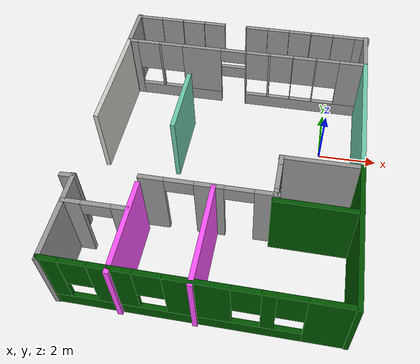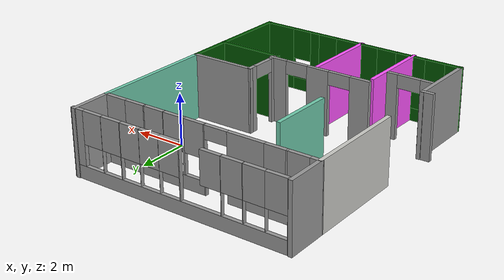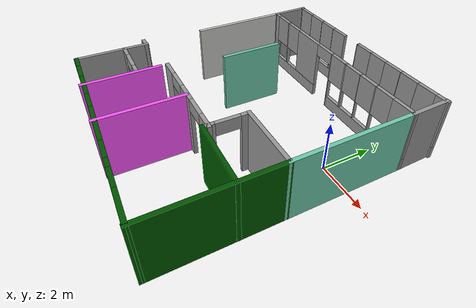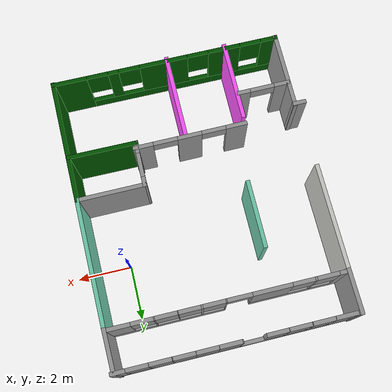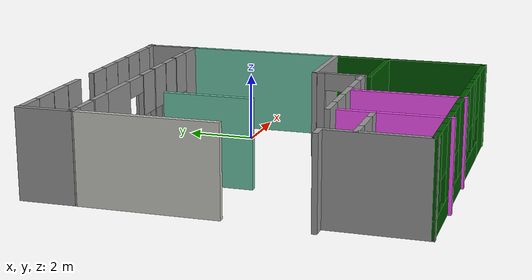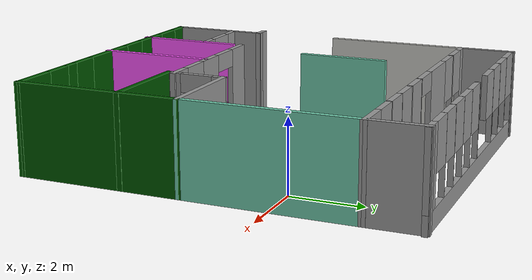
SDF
<?xml version='1.0'?>
<sdf version='1.6'>
  <model name='our_home'>
    <pose frame=''>-3.18431 -1.5516 0 0 -0 0</pose>
    <link name='Wall_1'>
      <collision name='Wall_1_Collision'>
        <geometry>
          <box>
            <size>3.98843 0.15 2.5</size>
          </box>
        </geometry>
        <pose frame=''>0 0 1.25 0 -0 0</pose>
      </collision>
      <visual name='Wall_1_Visual'>
        <pose frame=''>0 0 1.25 0 -0 0</pose>
        <geometry>
          <box>
            <size>3.98843 0.15 2.5</size>
          </box>
        </geometry>
        <material>
          <script>
            <uri>file://media/materials/scripts/gazebo.material</uri>
            <name>Gazebo/CeilingTiled</name>
          </script>
          <ambient>0.435294 0.796078 0.67451 1</ambient>
        </material>
        <meta>
          <layer>0</layer>
        </meta>
      </visual>
      <pose frame=''>-4.20959 1.9235 0 0 -0 1.57777</pose>
    </link>
    <link name='Wall_13'>
      <collision name='Wall_13_Collision'>
        <geometry>
          <box>
            <size>4.67985 0.15 2.5</size>
          </box>
        </geometry>
        <pose frame=''>0 0 1.25 0 -0 0</pose>
      </collision>
      <visual name='Wall_13_Visual'>
        <pose frame=''>0 0 1.25 0 -0 0</pose>
        <geometry>
          <box>
            <size>4.67985 0.15 2.5</size>
          </box>
        </geometry>
        <material>
          <script>
            <uri>file://media/materials/scripts/gazebo.material</uri>
            <name>Gazebo/Grey</name>
          </script>
          <ambient>0 0.333333 0 1</ambient>
        </material>
        <meta>
          <layer>0</layer>
        </meta>
      </visual>
      <pose frame=''>4.39155 -3.05803 0 0 0 -1.56957</pose>
    </link>
    <link name='Wall_14'>
      <pose frame=''>0.16282 -5.27256 0 0 -0 3.13446</pose>
      <visual name='Wall_14_Visual_0'>
        <pose frame=''>-3.6411 0 1.25 0 -0 0</pose>
        <geometry>
          <box>
            <size>1.331 0.15 2.5</size>
          </box>
        </geometry>
        <material>
          <script>
            <uri>file://media/materials/scripts/gazebo.material</uri>
            <name>Gazebo/Grey</name>
          </script>
          <ambient>0 0.333333 0 1</ambient>
        </material>
        <meta>
          <layer>0</layer>
        </meta>
      </visual>
      <collision name='Wall_14_Collision_0'>
        <geometry>
          <box>
            <size>1.331 0.15 2.5</size>
          </box>
        </geometry>
        <pose frame=''>-3.6411 0 1.25 0 -0 0</pose>
      </collision>
      <visual name='Wall_14_Visual_1'>
        <pose frame=''>0.665502 0 0.25 0 -0 0</pose>
        <geometry>
          <box>
            <size>7.2822 0.15 0.5</size>
          </box>
        </geometry>
        <material>
          <script>
            <uri>file://media/materials/scripts/gazebo.material</uri>
            <name>Gazebo/Grey</name>
          </script>
          <ambient>0 0.333333 0 1</ambient>
        </material>
        <meta>
          <layer>0</layer>
        </meta>
      </visual>
      <collision name='Wall_14_Collision_1'>
        <geometry>
          <box>
            <size>7.2822 0.15 0.5</size>
          </box>
        </geometry>
        <pose frame=''>0.665502 0 0.25 0 -0 0</pose>
      </collision>
      <visual name='Wall_14_Visual_2'>
        <pose frame=''>-1.9778 0 1.5 0 -0 0</pose>
        <geometry>
          <box>
            <size>0.395589 0.15 2</size>
          </box>
        </geometry>
        <material>
          <script>
            <uri>file://media/materials/scripts/gazebo.material</uri>
            <name>Gazebo/Grey</name>
          </script>
          <ambient>0 0.333333 0 1</ambient>
        </material>
        <meta>
          <layer>0</layer>
        </meta>
      </visual>
      <collision name='Wall_14_Collision_2'>
        <geometry>
          <box>
            <size>0.395589 0.15 2</size>
          </box>
        </geometry>
        <pose frame=''>-1.9778 0 1.5 0 -0 0</pose>
      </collision>
      <visual name='Wall_14_Visual_3'>
        <pose frame=''>-0.07181 0 1.5 0 -0 0</pose>
        <geometry>
          <box>
            <size>1.8164 0.15 2</size>
          </box>
        </geometry>
        <material>
          <script>
            <uri>file://media/materials/scripts/gazebo.material</uri>
            <name>Gazebo/Grey</name>
          </script>
          <ambient>0 0.333333 0 1</ambient>
        </material>
        <meta>
          <layer>0</layer>
        </meta>
      </visual>
      <collision name='Wall_14_Collision_3'>
        <geometry>
          <box>
            <size>1.8164 0.15 2</size>
          </box>
        </geometry>
        <pose frame=''>-0.07181 0 1.5 0 -0 0</pose>
      </collision>
      <visual name='Wall_14_Visual_4'>
        <pose frame=''>2.24598 0 1.5 0 -0 0</pose>
        <geometry>
          <box>
            <size>1.21918 0.15 2</size>
          </box>
        </geometry>
        <material>
          <script>
            <uri>file://media/materials/scripts/gazebo.material</uri>
            <name>Gazebo/Grey</name>
          </script>
          <ambient>0 0.333333 0 1</ambient>
        </material>
        <meta>
          <layer>0</layer>
        </meta>
      </visual>
      <collision name='Wall_14_Collision_4'>
        <geometry>
          <box>
            <size>1.21918 0.15 2</size>
          </box>
        </geometry>
        <pose frame=''>2.24598 0 1.5 0 -0 0</pose>
      </collision>
      <visual name='Wall_14_Visual_5'>
        <pose frame=''>3.98108 0 1.5 0 -0 0</pose>
        <geometry>
          <box>
            <size>0.651037 0.15 2</size>
          </box>
        </geometry>
        <material>
          <script>
            <uri>file://media/materials/scripts/gazebo.material</uri>
            <name>Gazebo/Grey</name>
          </script>
          <ambient>0 0.333333 0 1</ambient>
        </material>
        <meta>
          <layer>0</layer>
        </meta>
      </visual>
      <collision name='Wall_14_Collision_5'>
        <geometry>
          <box>
            <size>0.651037 0.15 2</size>
          </box>
        </geometry>
        <pose frame=''>3.98108 0 1.5 0 -0 0</pose>
      </collision>
      <visual name='Wall_14_Visual_6'>
        <pose frame=''>-2.5756 0 1.9 0 -0 0</pose>
        <geometry>
          <box>
            <size>0.8 0.15 1.2</size>
          </box>
        </geometry>
        <material>
          <script>
            <uri>file://media/materials/scripts/gazebo.material</uri>
            <name>Gazebo/Grey</name>
          </script>
          <ambient>0 0.333333 0 1</ambient>
        </material>
        <meta>
          <layer>0</layer>
        </meta>
      </visual>
      <collision name='Wall_14_Collision_6'>
        <geometry>
          <box>
            <size>0.8 0.15 1.2</size>
          </box>
        </geometry>
        <pose frame=''>-2.5756 0 1.9 0 -0 0</pose>
      </collision>
      <visual name='Wall_14_Visual_7'>
        <pose frame=''>-1.38001 0 1.9 0 -0 0</pose>
        <geometry>
          <box>
            <size>0.8 0.15 1.2</size>
          </box>
        </geometry>
        <material>
          <script>
            <uri>file://media/materials/scripts/gazebo.material</uri>
            <name>Gazebo/Grey</name>
          </script>
          <ambient>0 0.333333 0 1</ambient>
        </material>
        <meta>
          <layer>0</layer>
        </meta>
      </visual>
      <collision name='Wall_14_Collision_7'>
        <geometry>
          <box>
            <size>0.8 0.15 1.2</size>
          </box>
        </geometry>
        <pose frame=''>-1.38001 0 1.9 0 -0 0</pose>
      </collision>
      <visual name='Wall_14_Visual_8'>
        <pose frame=''>1.23639 0 1.9 0 -0 0</pose>
        <geometry>
          <box>
            <size>0.8 0.15 1.2</size>
          </box>
        </geometry>
        <material>
          <script>
            <uri>file://media/materials/scripts/gazebo.material</uri>
            <name>Gazebo/Grey</name>
          </script>
          <ambient>0 0.333333 0 1</ambient>
        </material>
        <meta>
          <layer>0</layer>
        </meta>
      </visual>
      <collision name='Wall_14_Collision_8'>
        <geometry>
          <box>
            <size>0.8 0.15 1.2</size>
          </box>
        </geometry>
        <pose frame=''>1.23639 0 1.9 0 -0 0</pose>
      </collision>
      <visual name='Wall_14_Visual_9'>
        <pose frame=''>3.25557 0 1.9 0 -0 0</pose>
        <geometry>
          <box>
            <size>0.8 0.15 1.2</size>
          </box>
        </geometry>
        <material>
          <script>
            <uri>file://media/materials/scripts/gazebo.material</uri>
            <name>Gazebo/Grey</name>
          </script>
          <ambient>0 0.333333 0 1</ambient>
        </material>
        <meta>
          <layer>0</layer>
        </meta>
      </visual>
      <collision name='Wall_14_Collision_9'>
        <geometry>
          <box>
            <size>0.8 0.15 1.2</size>
          </box>
        </geometry>
        <pose frame=''>3.25557 0 1.9 0 -0 0</pose>
      </collision>
    </link>
    <link name='Wall_17'>
      <collision name='Wall_17_Collision'>
        <geometry>
          <box>
            <size>2.92769 0.15 2.5</size>
          </box>
        </geometry>
        <pose frame=''>0 0 1.25 0 -0 0</pose>
      </collision>
      <visual name='Wall_17_Visual'>
        <pose frame=''>0 0 1.25 0 -0 0</pose>
        <geometry>
          <box>
            <size>2.92769 0.15 2.5</size>
          </box>
        </geometry>
        <material>
          <script>
            <uri>file://media/materials/scripts/gazebo.material</uri>
            <name>Gazebo/Grey</name>
          </script>
          <ambient>1 1 1 1</ambient>
        </material>
        <meta>
          <layer>0</layer>
        </meta>
      </visual>
      <pose frame=''>-4.06867 -3.87377 0 0 -0 1.5708</pose>
    </link>
    <link name='Wall_2'>
      <pose frame=''>0.078216 3.87343 0 0 -0 0</pose>
      <visual name='Wall_2_Visual_0'>
        <pose frame=''>-4.17296 0 1.25 0 -0 0</pose>
        <geometry>
          <box>
            <size>0.406443 0.15 2.5</size>
          </box>
        </geometry>
        <material>
          <script>
            <uri>file://media/materials/scripts/gazebo.material</uri>
            <name>Gazebo/Grey</name>
          </script>
          <ambient>1 1 1 1</ambient>
        </material>
        <meta>
          <layer>0</layer>
        </meta>
      </visual>
      <collision name='Wall_2_Collision_0'>
        <geometry>
          <box>
            <size>0.406443 0.15 2.5</size>
          </box>
        </geometry>
        <pose frame=''>-4.17296 0 1.25 0 -0 0</pose>
      </collision>
      <visual name='Wall_2_Visual_1'>
        <pose frame=''>0.048461 0 1.25 0 -0 0</pose>
        <geometry>
          <box>
            <size>0.041555 0.15 2.5</size>
          </box>
        </geometry>
        <material>
          <script>
            <uri>file://media/materials/scripts/gazebo.material</uri>
            <name>Gazebo/Grey</name>
          </script>
          <ambient>1 1 1 1</ambient>
        </material>
        <meta>
          <layer>0</layer>
        </meta>
      </visual>
      <collision name='Wall_2_Collision_1'>
        <geometry>
          <box>
            <size>0.041555 0.15 2.5</size>
          </box>
        </geometry>
        <pose frame=''>0.048461 0 1.25 0 -0 0</pose>
      </collision>
      <visual name='Wall_2_Visual_2'>
        <pose frame=''>-2.42103 0 0.25 0 -0 0</pose>
        <geometry>
          <box>
            <size>3.09742 0.15 0.5</size>
          </box>
        </geometry>
        <material>
          <script>
            <uri>file://media/materials/scripts/gazebo.material</uri>
            <name>Gazebo/Grey</name>
          </script>
          <ambient>1 1 1 1</ambient>
        </material>
        <meta>
          <layer>0</layer>
        </meta>
      </visual>
      <collision name='Wall_2_Collision_2'>
        <geometry>
          <box>
            <size>3.09742 0.15 0.5</size>
          </box>
        </geometry>
        <pose frame=''>-2.42103 0 0.25 0 -0 0</pose>
      </collision>
      <visual name='Wall_2_Visual_3'>
        <pose frame=''>2.22271 0 0.25 0 -0 0</pose>
        <geometry>
          <box>
            <size>4.30694 0.15 0.5</size>
          </box>
        </geometry>
        <material>
          <script>
            <uri>file://media/materials/scripts/gazebo.material</uri>
            <name>Gazebo/Grey</name>
          </script>
          <ambient>1 1 1 1</ambient>
        </material>
        <meta>
          <layer>0</layer>
        </meta>
      </visual>
      <collision name='Wall_2_Collision_3'>
        <geometry>
          <box>
            <size>4.30694 0.15 0.5</size>
          </box>
        </geometry>
        <pose frame=''>2.22271 0 0.25 0 -0 0</pose>
      </collision>
      <visual name='Wall_2_Visual_4'>
        <pose frame=''>-3.13433 0 1.5 0 -0 0</pose>
        <geometry>
          <box>
            <size>0.070821 0.15 2</size>
          </box>
        </geometry>
        <material>
          <script>
            <uri>file://media/materials/scripts/gazebo.material</uri>
            <name>Gazebo/Grey</name>
          </script>
          <ambient>1 1 1 1</ambient>
        </material>
        <meta>
          <layer>0</layer>
        </meta>
      </visual>
      <collision name='Wall_2_Collision_4'>
        <geometry>
          <box>
            <size>0.070821 0.15 2</size>
          </box>
        </geometry>
        <pose frame=''>-3.13433 0 1.5 0 -0 0</pose>
      </collision>
      <visual name='Wall_2_Visual_5'>
        <pose frame=''>-1.58562 0 1.5 0 -0 0</pose>
        <geometry>
          <box>
            <size>1.4266 0.15 2</size>
          </box>
        </geometry>
        <material>
          <script>
            <uri>file://media/materials/scripts/gazebo.material</uri>
            <name>Gazebo/Grey</name>
          </script>
          <ambient>1 1 1 1</ambient>
        </material>
        <meta>
          <layer>0</layer>
        </meta>
      </visual>
      <collision name='Wall_2_Collision_5'>
        <geometry>
          <box>
            <size>1.4266 0.15 2</size>
          </box>
        </geometry>
        <pose frame=''>-1.58562 0 1.5 0 -0 0</pose>
      </collision>
      <visual name='Wall_2_Visual_6'>
        <pose frame=''>-1.58562 0 1.5 0 -0 0</pose>
        <geometry>
          <box>
            <size>1.4266 0.15 2</size>
          </box>
        </geometry>
        <material>
          <script>
            <uri>file://media/materials/scripts/gazebo.material</uri>
            <name>Gazebo/Grey</name>
          </script>
          <ambient>1 1 1 1</ambient>
        </material>
        <meta>
          <layer>0</layer>
        </meta>
      </visual>
      <collision name='Wall_2_Collision_6'>
        <geometry>
          <box>
            <size>1.4266 0.15 2</size>
          </box>
        </geometry>
        <pose frame=''>-1.58562 0 1.5 0 -0 0</pose>
      </collision>
      <visual name='Wall_2_Visual_7'>
        <pose frame=''>0.902349 0 1.5 0 -0 0</pose>
        <geometry>
          <box>
            <size>0.066221 0.15 2</size>
          </box>
        </geometry>
        <material>
          <script>
            <uri>file://media/materials/scripts/gazebo.material</uri>
            <name>Gazebo/Grey</name>
          </script>
          <ambient>1 1 1 1</ambient>
        </material>
        <meta>
          <layer>0</layer>
        </meta>
      </visual>
      <collision name='Wall_2_Collision_7'>
        <geometry>
          <box>
            <size>0.066221 0.15 2</size>
          </box>
        </geometry>
        <pose frame=''>0.902349 0 1.5 0 -0 0</pose>
      </collision>
      <visual name='Wall_2_Visual_8'>
        <pose frame=''>1.74516 0 1.5 0 -0 0</pose>
        <geometry>
          <box>
            <size>0.019398 0.15 2</size>
          </box>
        </geometry>
        <material>
          <script>
            <uri>file://media/materials/scripts/gazebo.material</uri>
            <name>Gazebo/Grey</name>
          </script>
          <ambient>1 1 1 1</ambient>
        </material>
        <meta>
          <layer>0</layer>
        </meta>
      </visual>
      <collision name='Wall_2_Collision_8'>
        <geometry>
          <box>
            <size>0.019398 0.15 2</size>
          </box>
        </geometry>
        <pose frame=''>1.74516 0 1.5 0 -0 0</pose>
      </collision>
      <visual name='Wall_2_Visual_9'>
        <pose frame=''>2.57626 0 1.5 0 -0 0</pose>
        <geometry>
          <box>
            <size>0.042809 0.15 2</size>
          </box>
        </geometry>
        <material>
          <script>
            <uri>file://media/materials/scripts/gazebo.material</uri>
            <name>Gazebo/Grey</name>
          </script>
          <ambient>1 1 1 1</ambient>
        </material>
        <meta>
          <layer>0</layer>
        </meta>
      </visual>
      <collision name='Wall_2_Collision_9'>
        <geometry>
          <box>
            <size>0.042809 0.15 2</size>
          </box>
        </geometry>
        <pose frame=''>2.57626 0 1.5 0 -0 0</pose>
      </collision>
      <visual name='Wall_2_Visual_10'>
        <pose frame=''>3.88692 0 1.5 0 -0 0</pose>
        <geometry>
          <box>
            <size>0.978513 0.15 2</size>
          </box>
        </geometry>
        <material>
          <script>
            <uri>file://media/materials/scripts/gazebo.material</uri>
            <name>Gazebo/Grey</name>
          </script>
          <ambient>1 1 1 1</ambient>
        </material>
        <meta>
          <layer>0</layer>
        </meta>
      </visual>
      <collision name='Wall_2_Collision_10'>
        <geometry>
          <box>
            <size>0.978513 0.15 2</size>
          </box>
        </geometry>
        <pose frame=''>3.88692 0 1.5 0 -0 0</pose>
      </collision>
      <visual name='Wall_2_Visual_11'>
        <pose frame=''>-3.56974 0 1.9 0 -0 0</pose>
        <geometry>
          <box>
            <size>0.8 0.15 1.2</size>
          </box>
        </geometry>
        <material>
          <script>
            <uri>file://media/materials/scripts/gazebo.material</uri>
            <name>Gazebo/Grey</name>
          </script>
          <ambient>1 1 1 1</ambient>
        </material>
        <meta>
          <layer>0</layer>
        </meta>
      </visual>
      <collision name='Wall_2_Collision_11'>
        <geometry>
          <box>
            <size>0.8 0.15 1.2</size>
          </box>
        </geometry>
        <pose frame=''>-3.56974 0 1.9 0 -0 0</pose>
      </collision>
      <visual name='Wall_2_Visual_12'>
        <pose frame=''>0.469238 0 1.9 0 -0 0</pose>
        <geometry>
          <box>
            <size>0.8 0.15 1.2</size>
          </box>
        </geometry>
        <material>
          <script>
            <uri>file://media/materials/scripts/gazebo.material</uri>
            <name>Gazebo/Grey</name>
          </script>
          <ambient>1 1 1 1</ambient>
        </material>
        <meta>
          <layer>0</layer>
        </meta>
      </visual>
      <collision name='Wall_2_Collision_12'>
        <geometry>
          <box>
            <size>0.8 0.15 1.2</size>
          </box>
        </geometry>
        <pose frame=''>0.469238 0 1.9 0 -0 0</pose>
      </collision>
      <visual name='Wall_2_Visual_13'>
        <pose frame=''>-2.69891 0 1.9 0 -0 0</pose>
        <geometry>
          <box>
            <size>0.8 0.15 1.2</size>
          </box>
        </geometry>
        <material>
          <script>
            <uri>file://media/materials/scripts/gazebo.material</uri>
            <name>Gazebo/Grey</name>
          </script>
          <ambient>1 1 1 1</ambient>
        </material>
        <meta>
          <layer>0</layer>
        </meta>
      </visual>
      <collision name='Wall_2_Collision_13'>
        <geometry>
          <box>
            <size>0.8 0.15 1.2</size>
          </box>
        </geometry>
        <pose frame=''>-2.69891 0 1.9 0 -0 0</pose>
      </collision>
      <visual name='Wall_2_Visual_14'>
        <pose frame=''>1.33546 0 1.9 0 -0 0</pose>
        <geometry>
          <box>
            <size>0.8 0.15 1.2</size>
          </box>
        </geometry>
        <material>
          <script>
            <uri>file://media/materials/scripts/gazebo.material</uri>
            <name>Gazebo/Grey</name>
          </script>
          <ambient>1 1 1 1</ambient>
        </material>
        <meta>
          <layer>0</layer>
        </meta>
      </visual>
      <collision name='Wall_2_Collision_14'>
        <geometry>
          <box>
            <size>0.8 0.15 1.2</size>
          </box>
        </geometry>
        <pose frame=''>1.33546 0 1.9 0 -0 0</pose>
      </collision>
      <visual name='Wall_2_Visual_15'>
        <pose frame=''>2.15486 0 1.9 0 -0 0</pose>
        <geometry>
          <box>
            <size>0.8 0.15 1.2</size>
          </box>
        </geometry>
        <material>
          <script>
            <uri>file://media/materials/scripts/gazebo.material</uri>
            <name>Gazebo/Grey</name>
          </script>
          <ambient>1 1 1 1</ambient>
        </material>
        <meta>
          <layer>0</layer>
        </meta>
      </visual>
      <collision name='Wall_2_Collision_15'>
        <geometry>
          <box>
            <size>0.8 0.15 1.2</size>
          </box>
        </geometry>
        <pose frame=''>2.15486 0 1.9 0 -0 0</pose>
      </collision>
      <visual name='Wall_2_Visual_16'>
        <pose frame=''>2.99767 0 1.9 0 -0 0</pose>
        <geometry>
          <box>
            <size>0.8 0.15 1.2</size>
          </box>
        </geometry>
        <material>
          <script>
            <uri>file://media/materials/scripts/gazebo.material</uri>
            <name>Gazebo/Grey</name>
          </script>
          <ambient>1 1 1 1</ambient>
        </material>
        <meta>
          <layer>0</layer>
        </meta>
      </visual>
      <collision name='Wall_2_Collision_16'>
        <geometry>
          <box>
            <size>0.8 0.15 1.2</size>
          </box>
        </geometry>
        <pose frame=''>2.99767 0 1.9 0 -0 0</pose>
      </collision>
      <visual name='Wall_2_Visual_17'>
        <pose frame=''>-0.422317 0 2.25 0 -0 0</pose>
        <geometry>
          <box>
            <size>0.9 0.15 0.5</size>
          </box>
        </geometry>
        <material>
          <script>
            <uri>file://media/materials/scripts/gazebo.material</uri>
            <name>Gazebo/Grey</name>
          </script>
          <ambient>1 1 1 1</ambient>
        </material>
        <meta>
          <layer>0</layer>
        </meta>
      </visual>
      <collision name='Wall_2_Collision_17'>
        <geometry>
          <box>
            <size>0.9 0.15 0.5</size>
          </box>
        </geometry>
        <pose frame=''>-0.422317 0 2.25 0 -0 0</pose>
      </collision>
      <visual name='Wall_2_Visual_18'>
        <pose frame=''>-0.422317 0 2.25 0 -0 0</pose>
        <geometry>
          <box>
            <size>0.9 0.15 0.5</size>
          </box>
        </geometry>
        <material>
          <script>
            <uri>file://media/materials/scripts/gazebo.material</uri>
            <name>Gazebo/Grey</name>
          </script>
          <ambient>1 1 1 1</ambient>
        </material>
        <meta>
          <layer>0</layer>
        </meta>
      </visual>
      <collision name='Wall_2_Collision_18'>
        <geometry>
          <box>
            <size>0.9 0.15 0.5</size>
          </box>
        </geometry>
        <pose frame=''>-0.422317 0 2.25 0 -0 0</pose>
      </collision>
    </link>
    <link name='Wall_22'>
      <collision name='Wall_22_Collision'>
        <geometry>
          <box>
            <size>2.64011 0.15 2.5</size>
          </box>
        </geometry>
        <pose frame=''>0 0 1.25 0 -0 0</pose>
      </collision>
      <visual name='Wall_22_Visual'>
        <pose frame=''>0 0 1.25 0 -0 0</pose>
        <geometry>
          <box>
            <size>2.64011 0.15 2.5</size>
          </box>
        </geometry>
        <material>
          <script>
            <uri>file://media/materials/scripts/gazebo.material</uri>
            <name>Gazebo/Grey</name>
          </script>
          <ambient>0 0.333333 0 1</ambient>
        </material>
        <meta>
          <layer>0</layer>
        </meta>
      </visual>
      <pose frame=''>3.1493 -2.40829 0 0 0 -0.008123</pose>
    </link>
    <link name='Wall_3'>
      <collision name='Wall_3_Collision'>
        <geometry>
          <box>
            <size>4.78579 0.15 2.5</size>
          </box>
        </geometry>
        <pose frame=''>0 0 1.25 0 -0 0</pose>
      </collision>
      <visual name='Wall_3_Visual'>
        <pose frame=''>0 0 1.25 0 -0 0</pose>
        <geometry>
          <box>
            <size>4.78579 0.15 2.5</size>
          </box>
        </geometry>
        <material>
          <script>
            <uri>file://media/materials/scripts/gazebo.material</uri>
            <name>Gazebo/Grey</name>
          </script>
          <ambient>0.435294 0.796078 0.67451 1</ambient>
        </material>
        <meta>
          <layer>0</layer>
        </meta>
      </visual>
      <pose frame=''>4.38409 1.52478 0 0 0 -1.56877</pose>
    </link>
    <link name='Wall_30'>
      <collision name='Wall_30_Collision'>
        <geometry>
          <box>
            <size>3.25 0.15 2.5</size>
          </box>
        </geometry>
        <pose frame=''>0 0 1.25 0 -0 0</pose>
      </collision>
      <visual name='Wall_30_Visual'>
        <pose frame=''>0 0 1.25 0 -0 0</pose>
        <geometry>
          <box>
            <size>3.25 0.15 2.5</size>
          </box>
        </geometry>
        <material>
          <script>
            <uri>file://media/materials/scripts/gazebo.material</uri>
            <name>Gazebo/Grey</name>
          </script>
          <ambient>1 0.333333 1 1</ambient>
        </material>
        <meta>
          <layer>0</layer>
        </meta>
      </visual>
      <pose frame=''>0.098545 -3.79811 0 0 0 -1.5708</pose>
    </link>
    <link name='Wall_32'>
      <collision name='Wall_32_Collision'>
        <geometry>
          <box>
            <size>3 0.15 2.5</size>
          </box>
        </geometry>
        <pose frame=''>0 0 1.25 0 -0 0</pose>
      </collision>
      <visual name='Wall_32_Visual'>
        <pose frame=''>0 0 1.25 0 -0 0</pose>
        <geometry>
          <box>
            <size>3 0.15 2.5</size>
          </box>
        </geometry>
        <material>
          <script>
            <uri>file://media/materials/scripts/gazebo.material</uri>
            <name>Gazebo/Grey</name>
          </script>
          <ambient>1 0.333333 1 1</ambient>
        </material>
        <meta>
          <layer>0</layer>
        </meta>
      </visual>
      <pose frame=''>-2.11769 -3.92647 0 0 0 -1.5708</pose>
    </link>
    <link name='Wall_34'>
      <pose frame=''>-3.10668 -3.3867 0 0 -0 0</pose>
      <visual name='Wall_34_Visual_0'>
        <pose frame=''>-0.705147 0 1.25 0 -0 0</pose>
        <geometry>
          <box>
            <size>0.589707 0.15 2.5</size>
          </box>
        </geometry>
        <material>
          <script>
            <uri>file://media/materials/scripts/gazebo.material</uri>
            <name>Gazebo/Grey</name>
          </script>
          <ambient>1 1 1 1</ambient>
        </material>
        <meta>
          <layer>0</layer>
        </meta>
      </visual>
      <collision name='Wall_34_Collision_0'>
        <geometry>
          <box>
            <size>0.589707 0.15 2.5</size>
          </box>
        </geometry>
        <pose frame=''>-0.705147 0 1.25 0 -0 0</pose>
      </collision>
      <visual name='Wall_34_Visual_1'>
        <pose frame=''>0.744853 0 1.25 0 -0 0</pose>
        <geometry>
          <box>
            <size>0.510293 0.15 2.5</size>
          </box>
        </geometry>
        <material>
          <script>
            <uri>file://media/materials/scripts/gazebo.material</uri>
            <name>Gazebo/Grey</name>
          </script>
          <ambient>1 1 1 1</ambient>
        </material>
        <meta>
          <layer>0</layer>
        </meta>
      </visual>
      <collision name='Wall_34_Collision_1'>
        <geometry>
          <box>
            <size>0.510293 0.15 2.5</size>
          </box>
        </geometry>
        <pose frame=''>0.744853 0 1.25 0 -0 0</pose>
      </collision>
      <visual name='Wall_34_Visual_2'>
        <pose frame=''>0.039707 0 2.25 0 -0 0</pose>
        <geometry>
          <box>
            <size>0.9 0.15 0.5</size>
          </box>
        </geometry>
        <material>
          <script>
            <uri>file://media/materials/scripts/gazebo.material</uri>
            <name>Gazebo/Grey</name>
          </script>
          <ambient>1 1 1 1</ambient>
        </material>
        <meta>
          <layer>0</layer>
        </meta>
      </visual>
      <collision name='Wall_34_Collision_2'>
        <geometry>
          <box>
            <size>0.9 0.15 0.5</size>
          </box>
        </geometry>
        <pose frame=''>0.039707 0 2.25 0 -0 0</pose>
      </collision>
    </link>
    <link name='Wall_37'>
      <pose frame=''>-0.059424 -2.20614 0 0 -0 3.14159</pose>
      <visual name='Wall_37_Visual_0'>
        <pose frame=''>-1.74898 0 1.25 0 -0 0</pose>
        <geometry>
          <box>
            <size>0.752041 0.15 2.5</size>
          </box>
        </geometry>
        <material>
          <script>
            <uri>file://media/materials/scripts/gazebo.material</uri>
            <name>Gazebo/Grey</name>
          </script>
          <ambient>1 1 1 1</ambient>
        </material>
        <meta>
          <layer>0</layer>
        </meta>
      </visual>
      <collision name='Wall_37_Collision_0'>
        <geometry>
          <box>
            <size>0.752041 0.15 2.5</size>
          </box>
        </geometry>
        <pose frame=''>-1.74898 0 1.25 0 -0 0</pose>
      </collision>
      <visual name='Wall_37_Visual_1'>
        <pose frame=''>-0.021503 0 1.25 0 -0 0</pose>
        <geometry>
          <box>
            <size>0.902912 0.15 2.5</size>
          </box>
        </geometry>
        <material>
          <script>
            <uri>file://media/materials/scripts/gazebo.material</uri>
            <name>Gazebo/Grey</name>
          </script>
          <ambient>1 1 1 1</ambient>
        </material>
        <meta>
          <layer>0</layer>
        </meta>
      </visual>
      <collision name='Wall_37_Collision_1'>
        <geometry>
          <box>
            <size>0.902912 0.15 2.5</size>
          </box>
        </geometry>
        <pose frame=''>-0.021503 0 1.25 0 -0 0</pose>
      </collision>
      <visual name='Wall_37_Visual_2'>
        <pose frame=''>1.72748 0 1.25 0 -0 0</pose>
        <geometry>
          <box>
            <size>0.795047 0.15 2.5</size>
          </box>
        </geometry>
        <material>
          <script>
            <uri>file://media/materials/scripts/gazebo.material</uri>
            <name>Gazebo/Grey</name>
          </script>
          <ambient>1 1 1 1</ambient>
        </material>
        <meta>
          <layer>0</layer>
        </meta>
      </visual>
      <collision name='Wall_37_Collision_2'>
        <geometry>
          <box>
            <size>0.795047 0.15 2.5</size>
          </box>
        </geometry>
        <pose frame=''>1.72748 0 1.25 0 -0 0</pose>
      </collision>
      <visual name='Wall_37_Visual_3'>
        <pose frame=''>-0.922959 0 2.25 0 -0 0</pose>
        <geometry>
          <box>
            <size>0.9 0.15 0.5</size>
          </box>
        </geometry>
        <material>
          <script>
            <uri>file://media/materials/scripts/gazebo.material</uri>
            <name>Gazebo/Grey</name>
          </script>
          <ambient>1 1 1 1</ambient>
        </material>
        <meta>
          <layer>0</layer>
        </meta>
      </visual>
      <collision name='Wall_37_Collision_3'>
        <geometry>
          <box>
            <size>0.9 0.15 0.5</size>
          </box>
        </geometry>
        <pose frame=''>-0.922959 0 2.25 0 -0 0</pose>
      </collision>
      <visual name='Wall_37_Visual_4'>
        <pose frame=''>0.879953 0 2.25 0 -0 0</pose>
        <geometry>
          <box>
            <size>0.9 0.15 0.5</size>
          </box>
        </geometry>
        <material>
          <script>
            <uri>file://media/materials/scripts/gazebo.material</uri>
            <name>Gazebo/Grey</name>
          </script>
          <ambient>1 1 1 1</ambient>
        </material>
        <meta>
          <layer>0</layer>
        </meta>
      </visual>
      <collision name='Wall_37_Collision_4'>
        <geometry>
          <box>
            <size>0.9 0.15 0.5</size>
          </box>
        </geometry>
        <pose frame=''>0.879953 0 2.25 0 -0 0</pose>
      </collision>
    </link>
    <link name='Wall_39'>
      <collision name='Wall_39_Collision'>
        <geometry>
          <box>
            <size>0.5 0.15 2.5</size>
          </box>
        </geometry>
        <pose frame=''>0 0 1.25 0 -0 0</pose>
      </collision>
      <visual name='Wall_39_Visual'>
        <pose frame=''>0 0 1.25 0 -0 0</pose>
        <geometry>
          <box>
            <size>0.5 0.15 2.5</size>
          </box>
        </geometry>
        <material>
          <script>
            <uri>file://media/materials/scripts/gazebo.material</uri>
            <name>Gazebo/Grey</name>
          </script>
          <ambient>1 1 1 1</ambient>
        </material>
        <meta>
          <layer>0</layer>
        </meta>
      </visual>
      <pose frame=''>-4.24367 -2.50806 0 0 -0 3.14159</pose>
    </link>
    <link name='Wall_47'>
      <collision name='Wall_47_Collision'>
        <geometry>
          <box>
            <size>1.65784 0.15 2.5</size>
          </box>
        </geometry>
        <pose frame=''>0 0 1.25 0 -0 0</pose>
      </collision>
      <visual name='Wall_47_Visual'>
        <pose frame=''>0 0 1.25 0 -0 0</pose>
        <geometry>
          <box>
            <size>1.65784 0.15 2.5</size>
          </box>
        </geometry>
        <material>
          <script>
            <uri>file://media/materials/scripts/gazebo.material</uri>
            <name>Gazebo/Grey</name>
          </script>
          <ambient>1 1 1 1</ambient>
        </material>
        <meta>
          <layer>0</layer>
        </meta>
      </visual>
      <pose frame=''>-4.23291 4.59652 0 0 -0 1.58399</pose>
    </link>
    <link name='Wall_48'>
      <pose frame=''>0.118674 5.31961 0 0 -0 0</pose>
      <visual name='Wall_48_Visual_0'>
        <pose frame=''>-4.31238 0 1.25 0 -0 0</pose>
        <geometry>
          <box>
            <size>0.125234 0.15 2.5</size>
          </box>
        </geometry>
        <material>
          <script>
            <uri>file://media/materials/scripts/gazebo.material</uri>
            <name>Gazebo/Grey</name>
          </script>
          <ambient>1 1 1 1</ambient>
        </material>
        <meta>
          <layer>0</layer>
        </meta>
      </visual>
      <collision name='Wall_48_Collision_0'>
        <geometry>
          <box>
            <size>0.125234 0.15 2.5</size>
          </box>
        </geometry>
        <pose frame=''>-4.31238 0 1.25 0 -0 0</pose>
      </collision>
      <visual name='Wall_48_Visual_1'>
        <pose frame=''>0.062617 0 0.25 0 -0 0</pose>
        <geometry>
          <box>
            <size>8.62477 0.15 0.5</size>
          </box>
        </geometry>
        <material>
          <script>
            <uri>file://media/materials/scripts/gazebo.material</uri>
            <name>Gazebo/Grey</name>
          </script>
          <ambient>1 1 1 1</ambient>
        </material>
        <meta>
          <layer>0</layer>
        </meta>
      </visual>
      <collision name='Wall_48_Collision_1'>
        <geometry>
          <box>
            <size>8.62477 0.15 0.5</size>
          </box>
        </geometry>
        <pose frame=''>0.062617 0 0.25 0 -0 0</pose>
      </collision>
      <visual name='Wall_48_Visual_2'>
        <pose frame=''>-3.4464 0 1.5 0 -0 0</pose>
        <geometry>
          <box>
            <size>0.006725 0.15 2</size>
          </box>
        </geometry>
        <material>
          <script>
            <uri>file://media/materials/scripts/gazebo.material</uri>
            <name>Gazebo/Grey</name>
          </script>
          <ambient>1 1 1 1</ambient>
        </material>
        <meta>
          <layer>0</layer>
        </meta>
      </visual>
      <collision name='Wall_48_Collision_2'>
        <geometry>
          <box>
            <size>0.006725 0.15 2</size>
          </box>
        </geometry>
        <pose frame=''>-3.4464 0 1.5 0 -0 0</pose>
      </collision>
      <visual name='Wall_48_Visual_3'>
        <pose frame=''>-2.63307 0 1.5 0 -0 0</pose>
        <geometry>
          <box>
            <size>0.01995 0.15 2</size>
          </box>
        </geometry>
        <material>
          <script>
            <uri>file://media/materials/scripts/gazebo.material</uri>
            <name>Gazebo/Grey</name>
          </script>
          <ambient>1 1 1 1</ambient>
        </material>
        <meta>
          <layer>0</layer>
        </meta>
      </visual>
      <collision name='Wall_48_Collision_3'>
        <geometry>
          <box>
            <size>0.01995 0.15 2</size>
          </box>
        </geometry>
        <pose frame=''>-2.63307 0 1.5 0 -0 0</pose>
      </collision>
      <visual name='Wall_48_Visual_4'>
        <pose frame=''>-1.81598 0 1.5 0 -0 0</pose>
        <geometry>
          <box>
            <size>0.014211 0.15 2</size>
          </box>
        </geometry>
        <material>
          <script>
            <uri>file://media/materials/scripts/gazebo.material</uri>
            <name>Gazebo/Grey</name>
          </script>
          <ambient>1 1 1 1</ambient>
        </material>
        <meta>
          <layer>0</layer>
        </meta>
      </visual>
      <collision name='Wall_48_Collision_4'>
        <geometry>
          <box>
            <size>0.014211 0.15 2</size>
          </box>
        </geometry>
        <pose frame=''>-1.81598 0 1.5 0 -0 0</pose>
      </collision>
      <visual name='Wall_48_Visual_5'>
        <pose frame=''>-0.206278 0 1.5 0 -0 0</pose>
        <geometry>
          <box>
            <size>0.033175 0.15 2</size>
          </box>
        </geometry>
        <material>
          <script>
            <uri>file://media/materials/scripts/gazebo.material</uri>
            <name>Gazebo/Grey</name>
          </script>
          <ambient>1 1 1 1</ambient>
        </material>
        <meta>
          <layer>0</layer>
        </meta>
      </visual>
      <collision name='Wall_48_Collision_5'>
        <geometry>
          <box>
            <size>0.033175 0.15 2</size>
          </box>
        </geometry>
        <pose frame=''>-0.206278 0 1.5 0 -0 0</pose>
      </collision>
      <visual name='Wall_48_Visual_6'>
        <pose frame=''>0.613672 0 1.5 0 -0 0</pose>
        <geometry>
          <box>
            <size>0.006725 0.15 2</size>
          </box>
        </geometry>
        <material>
          <script>
            <uri>file://media/materials/scripts/gazebo.material</uri>
            <name>Gazebo/Grey</name>
          </script>
          <ambient>1 1 1 1</ambient>
        </material>
        <meta>
          <layer>0</layer>
        </meta>
      </visual>
      <collision name='Wall_48_Collision_6'>
        <geometry>
          <box>
            <size>0.006725 0.15 2</size>
          </box>
        </geometry>
        <pose frame=''>0.613672 0 1.5 0 -0 0</pose>
      </collision>
      <visual name='Wall_48_Visual_7'>
        <pose frame=''>1.4204 0 1.5 0 -0 0</pose>
        <geometry>
          <box>
            <size>0.006725 0.15 2</size>
          </box>
        </geometry>
        <material>
          <script>
            <uri>file://media/materials/scripts/gazebo.material</uri>
            <name>Gazebo/Grey</name>
          </script>
          <ambient>1 1 1 1</ambient>
        </material>
        <meta>
          <layer>0</layer>
        </meta>
      </visual>
      <collision name='Wall_48_Collision_7'>
        <geometry>
          <box>
            <size>0.006725 0.15 2</size>
          </box>
        </geometry>
        <pose frame=''>1.4204 0 1.5 0 -0 0</pose>
      </collision>
      <visual name='Wall_48_Visual_8'>
        <pose frame=''>2.23373 0 1.5 0 -0 0</pose>
        <geometry>
          <box>
            <size>0.01995 0.15 2</size>
          </box>
        </geometry>
        <material>
          <script>
            <uri>file://media/materials/scripts/gazebo.material</uri>
            <name>Gazebo/Grey</name>
          </script>
          <ambient>1 1 1 1</ambient>
        </material>
        <meta>
          <layer>0</layer>
        </meta>
      </visual>
      <collision name='Wall_48_Collision_8'>
        <geometry>
          <box>
            <size>0.01995 0.15 2</size>
          </box>
        </geometry>
        <pose frame=''>2.23373 0 1.5 0 -0 0</pose>
      </collision>
      <visual name='Wall_48_Visual_9'>
        <pose frame=''>3.04707 0 1.5 0 -0 0</pose>
        <geometry>
          <box>
            <size>0.006725 0.15 2</size>
          </box>
        </geometry>
        <material>
          <script>
            <uri>file://media/materials/scripts/gazebo.material</uri>
            <name>Gazebo/Grey</name>
          </script>
          <ambient>1 1 1 1</ambient>
        </material>
        <meta>
          <layer>0</layer>
        </meta>
      </visual>
      <collision name='Wall_48_Collision_9'>
        <geometry>
          <box>
            <size>0.006725 0.15 2</size>
          </box>
        </geometry>
        <pose frame=''>3.04707 0 1.5 0 -0 0</pose>
      </collision>
      <visual name='Wall_48_Visual_10'>
        <pose frame=''>4.11272 0 1.5 0 -0 0</pose>
        <geometry>
          <box>
            <size>0.524565 0.15 2</size>
          </box>
        </geometry>
        <material>
          <script>
            <uri>file://media/materials/scripts/gazebo.material</uri>
            <name>Gazebo/Grey</name>
          </script>
          <ambient>1 1 1 1</ambient>
        </material>
        <meta>
          <layer>0</layer>
        </meta>
      </visual>
      <collision name='Wall_48_Collision_10'>
        <geometry>
          <box>
            <size>0.524565 0.15 2</size>
          </box>
        </geometry>
        <pose frame=''>4.11272 0 1.5 0 -0 0</pose>
      </collision>
      <visual name='Wall_48_Visual_11'>
        <pose frame=''>-3.84977 0 1.9 0 -0 0</pose>
        <geometry>
          <box>
            <size>0.8 0.15 1.2</size>
          </box>
        </geometry>
        <material>
          <script>
            <uri>file://media/materials/scripts/gazebo.material</uri>
            <name>Gazebo/Grey</name>
          </script>
          <ambient>1 1 1 1</ambient>
        </material>
        <meta>
          <layer>0</layer>
        </meta>
      </visual>
      <collision name='Wall_48_Collision_11'>
        <geometry>
          <box>
            <size>0.8 0.15 1.2</size>
          </box>
        </geometry>
        <pose frame=''>-3.84977 0 1.9 0 -0 0</pose>
      </collision>
      <visual name='Wall_48_Visual_12'>
        <pose frame=''>-3.04304 0 1.9 0 -0 0</pose>
        <geometry>
          <box>
            <size>0.8 0.15 1.2</size>
          </box>
        </geometry>
        <material>
          <script>
            <uri>file://media/materials/scripts/gazebo.material</uri>
            <name>Gazebo/Grey</name>
          </script>
          <ambient>1 1 1 1</ambient>
        </material>
        <meta>
          <layer>0</layer>
        </meta>
      </visual>
      <collision name='Wall_48_Collision_12'>
        <geometry>
          <box>
            <size>0.8 0.15 1.2</size>
          </box>
        </geometry>
        <pose frame=''>-3.04304 0 1.9 0 -0 0</pose>
      </collision>
      <visual name='Wall_48_Visual_13'>
        <pose frame=''>-2.22309 0 1.9 0 -0 0</pose>
        <geometry>
          <box>
            <size>0.8 0.15 1.2</size>
          </box>
        </geometry>
        <material>
          <script>
            <uri>file://media/materials/scripts/gazebo.material</uri>
            <name>Gazebo/Grey</name>
          </script>
          <ambient>1 1 1 1</ambient>
        </material>
        <meta>
          <layer>0</layer>
        </meta>
      </visual>
      <collision name='Wall_48_Collision_13'>
        <geometry>
          <box>
            <size>0.8 0.15 1.2</size>
          </box>
        </geometry>
        <pose frame=''>-2.22309 0 1.9 0 -0 0</pose>
      </collision>
      <visual name='Wall_48_Visual_14'>
        <pose frame=''>-1.41587 0 1.9 0 -0 0</pose>
        <geometry>
          <box>
            <size>0.786014 0.15 1.2</size>
          </box>
        </geometry>
        <material>
          <script>
            <uri>file://media/materials/scripts/gazebo.material</uri>
            <name>Gazebo/Grey</name>
          </script>
          <ambient>1 1 1 1</ambient>
        </material>
        <meta>
          <layer>0</layer>
        </meta>
      </visual>
      <collision name='Wall_48_Collision_14'>
        <geometry>
          <box>
            <size>0.786014 0.15 1.2</size>
          </box>
        </geometry>
        <pose frame=''>-1.41587 0 1.9 0 -0 0</pose>
      </collision>
      <visual name='Wall_48_Visual_15'>
        <pose frame=''>0.21031 0 1.9 0 -0 0</pose>
        <geometry>
          <box>
            <size>0.8 0.15 1.2</size>
          </box>
        </geometry>
        <material>
          <script>
            <uri>file://media/materials/scripts/gazebo.material</uri>
            <name>Gazebo/Grey</name>
          </script>
          <ambient>1 1 1 1</ambient>
        </material>
        <meta>
          <layer>0</layer>
        </meta>
      </visual>
      <collision name='Wall_48_Collision_15'>
        <geometry>
          <box>
            <size>0.8 0.15 1.2</size>
          </box>
        </geometry>
        <pose frame=''>0.21031 0 1.9 0 -0 0</pose>
      </collision>
      <visual name='Wall_48_Visual_16'>
        <pose frame=''>1.01703 0 1.9 0 -0 0</pose>
        <geometry>
          <box>
            <size>0.8 0.15 1.2</size>
          </box>
        </geometry>
        <material>
          <script>
            <uri>file://media/materials/scripts/gazebo.material</uri>
            <name>Gazebo/Grey</name>
          </script>
          <ambient>1 1 1 1</ambient>
        </material>
        <meta>
          <layer>0</layer>
        </meta>
      </visual>
      <collision name='Wall_48_Collision_16'>
        <geometry>
          <box>
            <size>0.8 0.15 1.2</size>
          </box>
        </geometry>
        <pose frame=''>1.01703 0 1.9 0 -0 0</pose>
      </collision>
      <visual name='Wall_48_Visual_17'>
        <pose frame=''>1.82376 0 1.9 0 -0 0</pose>
        <geometry>
          <box>
            <size>0.8 0.15 1.2</size>
          </box>
        </geometry>
        <material>
          <script>
            <uri>file://media/materials/scripts/gazebo.material</uri>
            <name>Gazebo/Grey</name>
          </script>
          <ambient>1 1 1 1</ambient>
        </material>
        <meta>
          <layer>0</layer>
        </meta>
      </visual>
      <collision name='Wall_48_Collision_17'>
        <geometry>
          <box>
            <size>0.8 0.15 1.2</size>
          </box>
        </geometry>
        <pose frame=''>1.82376 0 1.9 0 -0 0</pose>
      </collision>
      <visual name='Wall_48_Visual_18'>
        <pose frame=''>2.64371 0 1.9 0 -0 0</pose>
        <geometry>
          <box>
            <size>0.8 0.15 1.2</size>
          </box>
        </geometry>
        <material>
          <script>
            <uri>file://media/materials/scripts/gazebo.material</uri>
            <name>Gazebo/Grey</name>
          </script>
          <ambient>1 1 1 1</ambient>
        </material>
        <meta>
          <layer>0</layer>
        </meta>
      </visual>
      <collision name='Wall_48_Collision_18'>
        <geometry>
          <box>
            <size>0.8 0.15 1.2</size>
          </box>
        </geometry>
        <pose frame=''>2.64371 0 1.9 0 -0 0</pose>
      </collision>
      <visual name='Wall_48_Visual_19'>
        <pose frame=''>3.45044 0 1.9 0 -0 0</pose>
        <geometry>
          <box>
            <size>0.8 0.15 1.2</size>
          </box>
        </geometry>
        <material>
          <script>
            <uri>file://media/materials/scripts/gazebo.material</uri>
            <name>Gazebo/Grey</name>
          </script>
          <ambient>1 1 1 1</ambient>
        </material>
        <meta>
          <layer>0</layer>
        </meta>
      </visual>
      <collision name='Wall_48_Collision_19'>
        <geometry>
          <box>
            <size>0.8 0.15 1.2</size>
          </box>
        </geometry>
        <pose frame=''>3.45044 0 1.9 0 -0 0</pose>
      </collision>
    </link>
    <link name='Wall_5'>
      <collision name='Wall_5_Collision'>
        <geometry>
          <box>
            <size>2.5 0.15 2.5</size>
          </box>
        </geometry>
        <pose frame=''>0 0 1.25 0 -0 0</pose>
      </collision>
      <visual name='Wall_5_Visual'>
        <pose frame=''>0 0 1.25 0 -0 0</pose>
        <geometry>
          <box>
            <size>2.5 0.15 2.5</size>
          </box>
        </geometry>
        <material>
          <script>
            <uri>file://media/materials/scripts/gazebo.material</uri>
            <name>Gazebo/Grey</name>
          </script>
          <ambient>0.435294 0.796078 0.67451 1</ambient>
        </material>
        <meta>
          <layer>0</layer>
        </meta>
      </visual>
      <pose frame=''>-1.64582 1.16981 0 0 0 -1.5708</pose>
    </link>
    <link name='Wall_53'>
      <collision name='Wall_53_Collision'>
        <geometry>
          <box>
            <size>1.65787 0.15 2.5</size>
          </box>
        </geometry>
        <pose frame=''>0 0 1.25 0 -0 0</pose>
      </collision>
      <visual name='Wall_53_Visual'>
        <pose frame=''>0 0 1.25 0 -0 0</pose>
        <geometry>
          <box>
            <size>1.65787 0.15 2.5</size>
          </box>
        </geometry>
        <material>
          <script>
            <uri>file://media/materials/scripts/gazebo.material</uri>
            <name>Gazebo/Grey</name>
          </script>
          <ambient>1 1 1 1</ambient>
        </material>
        <meta>
          <layer>0</layer>
        </meta>
      </visual>
      <pose frame=''>4.36827 4.59652 0 0 -0 1.58555</pose>
    </link>
    <link name='Wall_8'>
      <collision name='Wall_8_Collision'>
        <geometry>
          <box>
            <size>2.5998 0.15 2.5</size>
          </box>
        </geometry>
        <pose frame=''>0 0 1.25 0 -0 0</pose>
      </collision>
      <visual name='Wall_8_Visual'>
        <pose frame=''>0 0 1.25 0 -0 0</pose>
        <geometry>
          <box>
            <size>2.5998 0.15 2.5</size>
          </box>
        </geometry>
        <material>
          <script>
            <uri>file://media/materials/scripts/gazebo.material</uri>
            <name>Gazebo/Grey</name>
          </script>
          <ambient>1 1 1 1</ambient>
        </material>
        <meta>
          <layer>0</layer>
        </meta>
      </visual>
      <pose frame=''>3.15232 -0.793055 0 0 -0 3.14155</pose>
    </link>
    <link name='Wall_9'>
      <pose frame=''>1.93175 -1.59559 0 0 0 -1.57981</pose>
      <visual name='Wall_9_Visual_0'>
        <pose frame=''>-0.687809 0 1.25 0 -0 0</pose>
        <geometry>
          <box>
            <size>0.379623 0.15 2.5</size>
          </box>
        </geometry>
        <material>
          <script>
            <uri>file://media/materials/scripts/gazebo.material</uri>
            <name>Gazebo/Grey</name>
          </script>
          <ambient>1 1 1 1</ambient>
        </material>
        <meta>
          <layer>0</layer>
        </meta>
      </visual>
      <collision name='Wall_9_Collision_0'>
        <geometry>
          <box>
            <size>0.379623 0.15 2.5</size>
          </box>
        </geometry>
        <pose frame=''>-0.687809 0 1.25 0 -0 0</pose>
      </collision>
      <visual name='Wall_9_Visual_1'>
        <pose frame=''>0.639812 0 1.25 0 -0 0</pose>
        <geometry>
          <box>
            <size>0.475618 0.15 2.5</size>
          </box>
        </geometry>
        <material>
          <script>
            <uri>file://media/materials/scripts/gazebo.material</uri>
            <name>Gazebo/Grey</name>
          </script>
          <ambient>1 1 1 1</ambient>
        </material>
        <meta>
          <layer>0</layer>
        </meta>
      </visual>
      <collision name='Wall_9_Collision_1'>
        <geometry>
          <box>
            <size>0.475618 0.15 2.5</size>
          </box>
        </geometry>
        <pose frame=''>0.639812 0 1.25 0 -0 0</pose>
      </collision>
      <visual name='Wall_9_Visual_2'>
        <pose frame=''>-0.047997 0 2.25 0 -0 0</pose>
        <geometry>
          <box>
            <size>0.9 0.15 0.5</size>
          </box>
        </geometry>
        <material>
          <script>
            <uri>file://media/materials/scripts/gazebo.material</uri>
            <name>Gazebo/Grey</name>
          </script>
          <ambient>1 1 1 1</ambient>
        </material>
        <meta>
          <layer>0</layer>
        </meta>
      </visual>
      <collision name='Wall_9_Collision_2'>
        <geometry>
          <box>
            <size>0.9 0.15 0.5</size>
          </box>
        </geometry>
        <pose frame=''>-0.047997 0 2.25 0 -0 0</pose>
      </collision>
    </link>
    <static>1</static>
  </model>
</sdf>
